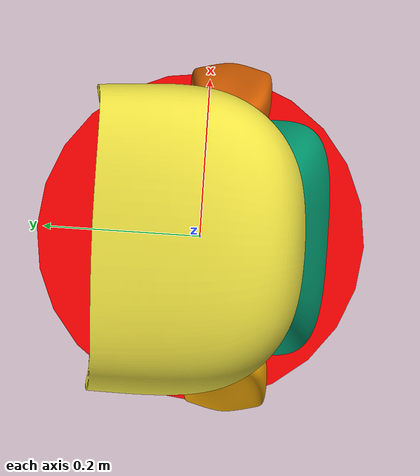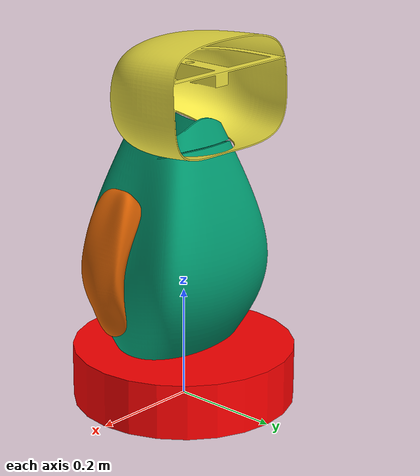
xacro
<?xml version="1.0"?>
<robot name="NEma" xmlns:xacro="http://www.ros.org/wiki/xacro">
    <xacro:include filename="$(find nema_description)/urdf/body.xacro" />
    <xacro:include filename="$(find nema_description)/urdf/arm.xacro" />
    <xacro:include filename="$(find nema_description)/urdf/joints.xacro" />
    <xacro:include filename="$(find nema_description)/urdf/gazebo.xacro" />
    <xacro:include filename="$(find nema_description)/urdf/robot_controllers.xacro" />
</robot>

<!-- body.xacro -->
<robot xmlns:xacro="http://www.ros.org/wiki/xacro">

    <link name="world"></link>

    <link name="base_link">
        <visual>
            <origin xyz="0.0 0.0 0.050" rpy="0.0 0.0 0.0"/>
            <geometry>
                <cylinder radius="0.200" length="0.1"/>
            </geometry>
	    <material name="red">
       		<color rgba="1 0 0 1"/>
    	    </material>
        </visual>
        <collision>
            <origin xyz="0.0 0.0 0.050" rpy="0.0 0.0 0.0"/>
            <geometry>
                <cylinder radius="0.200" length="0.1"/>
            </geometry>
        </collision>
        <inertial>
            <origin xyz="0 0 0.050" rpy="0.0 0.0 0.0"/>
            <mass value="0.1"/>
            <inertia ixx="0.1" ixy="0.0" ixz="0.0" iyy="0.1" iyz="0.0" izz="0.1"/>
        </inertial>
    </link>

    <link name="body_link">
        <visual>
            <origin xyz="0.0 -0.05 -0.010" rpy="0.0 0.0 0.0"/>
            <geometry>
                <mesh filename="package://nema_description/3D/Mesh/Body.dae" scale="0.002 0.002 0.002"/>
            </geometry>
        </visual>
        <collision>
            <origin xyz="0.0 -0.05 -0.010" rpy="0.0 0.0 0.0"/>
            <geometry>
                <mesh filename="package://nema_description/3D/Collition/Body.stl" scale="0.002 0.002 0.002"/>
            </geometry>
        </collision>
        <inertial>
            <origin xyz="0 0 0.0" rpy="0.0 0.0 0.0"/>
            <mass value="0.4"/>
            <inertia ixx="0.4" ixy="0.0" ixz="0.0" iyy="0.4" iyz="0.0" izz="0.4"/>
        </inertial>
    </link>

    <link name="face_link">
        <visual>
            <origin xyz="0.0 0.050 -0.470" rpy="0.0 0.0 3.14"/>
            <geometry>
                <mesh filename="package://nema_description/3D/Mesh/Face.dae" scale="0.002 0.002 0.002"/>
            </geometry>
        </visual>
        <collision>
            <origin xyz="0.0 0.050 -0.470" rpy="0.0 0.0 3.14"/>
            <geometry>
                <mesh filename="package://nema_description/3D/Collition/Face.stl" scale="0.002 0.002 0.002"/>
            </geometry>
        </collision>
        <inertial>
            <origin xyz="0 0 0.075" rpy="0.0 0.0 0.0"/>
            <mass value="0.08"/>
            <inertia ixx="0.08" ixy="0.0" ixz="0.0" iyy="0.08" iyz="0.0" izz="0.08"/>
        </inertial>
    </link>

    <link name="face_intermediate_link">
        <inertial>
            <mass value="0.01"/>
            <inertia ixx="0.0001" ixy="0" ixz="0" iyy="0.0001" iyz="0" izz="0.0001"/>
        </inertial>
    </link>

    <xacro:macro name="material_visual" params="ref_link">
        <gazebo reference="${ref_link}">
            <visual>
                <material>
                    <ambient>0.3 0.3 0.3 1.0</ambient>
                    <diffuse>0.7 0.7 0.7 1.0</diffuse>
                    <specular>0.01 0.01 0.01 1.0</specular>
                    <emissive>0.0 0.0 0.0 1.0</emissive>
                </material>
            </visual>
        </gazebo>
    </xacro:macro>
    <xacro:material_visual ref_link="base_link"/>
    <xacro:material_visual ref_link="body_link"/>
    <xacro:material_visual ref_link="face_link"/>
</robot>

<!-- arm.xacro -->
<robot xmlns:xacro="http://www.ros.org/wiki/xacro">

    <link name="right_arm">
        <visual>
            <origin xyz="-0.12 -0.02 -0.35" rpy="0.0 0.0 0.0"/>
            <geometry>
                <mesh filename="package://nema_description/3D/Mesh/RightArm.dae" scale="0.002 0.002 0.002"/>
            </geometry>
        </visual>
        <collision>
            <origin xyz="-0.12 -0.02 -0.35" rpy="0.0 0.0 0.0"/>
            <geometry>
                <mesh filename="package://nema_description/3D/Collition/RightArm.stl" scale="0.002 0.002 0.002"/>
            </geometry>
        </collision>
        <inertial>
            <origin xyz="0.0 0.0 -0.075" rpy="0.0 0.0 0.0"/>
            <mass value="0.06"/>
            <inertia ixx="0.06" ixy="0.0" ixz="0.0" iyy="0.06" iyz="0.0" izz="0.06"/>
        </inertial>
    </link>

    <link name="right_arm_intermediate_link">
        <origin xyz="0.0 0.0 0.0" rpy="0.0 0.0 3.14"/>
        <inertial>
            <mass value="0.01"/>
            <inertia ixx="0.0001" ixy="0" ixz="0" iyy="0.0001" iyz="0" izz="0.0001"/>
        </inertial>
    </link>
    <link name="left_arm_intermediate_link">
        <origin xyz="0.0 0.0 0.0" rpy="0.0 0.0 3.14"/>
        <inertial>
            <mass value="0.01"/>
            <inertia ixx="0.0001" ixy="0" ixz="0" iyy="0.0001" iyz="0" izz="0.0001"/>
        </inertial>
    </link>

    <link name="left_arm">
        <visual>
            <origin xyz="0.24 0 -0.38" rpy="0.0 0.0 0.0"/>
            <geometry>
                <mesh filename="package://nema_description/3D/Mesh/LeftArm.dae" scale="0.002 0.002 0.002"/>
            </geometry>
        </visual>
        <collision>
            <origin xyz="0.24 0 -0.38" rpy="0.0 0.0 0.0"/>
            <geometry>
                <mesh filename="package://nema_description/3D/Collition/LeftArm.stl" scale="0.002 0.002 0.002"/>
            </geometry>
        </collision>
        <inertial>
            <origin xyz="0.0 0.0 -0.0375" rpy="0.0 0.0 0.0"/>
            <mass value="0.03"/>
            <inertia ixx="0.03" ixy="0.0" ixz="0.0" iyy="0.03" iyz="0.0" izz="0.03"/>
        </inertial>
    </link>
    <xacro:macro name="material_visual" params="ref_link">
        <gazebo reference="${ref_link}">
            <visual>
                <material>
                    <ambient>0.3 0.3 0.3 1.0</ambient>
                    <diffuse>0.7 0.7 0.7 1.0</diffuse>
                    <specular>0.01 0.01 0.01 1.0</specular>
                    <emissive>0.0 0.0 0.0 1.0</emissive>
                </material>
            </visual>
        </gazebo>
    </xacro:macro>

    <xacro:material_visual ref_link="right_arm"/>
    <xacro:material_visual ref_link="left_arm"/>
</robot>

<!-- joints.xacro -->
<robot xmlns:xacro="http://www.ros.org/wiki/xacro">

    <joint name="fixed" type="fixed">
        <origin xyz="0.0 0.0 0.0" rpy="0.0 0.0 0.0"/>
        <parent link="world"/>
        <child link="base_link"/>
    </joint>

    <joint name="body_joint" type="revolute">
        <safety_controller k_position="100.0" k_velocity="40.0" soft_lower_limit="-0.8" soft_upper_limit="0.8"/>
        <origin rpy="0 0 0" xyz="0 0 0.100"/>
        <parent link="base_link"/>
        <child link="body_link"/>
        <axis xyz="0 0 1"/>
        <limit effort="5" lower="-0.85" upper="0.85" velocity="0.3"/>
    </joint>

    <joint name="face_joint_z" type="revolute">
        <safety_controller k_position="100.0" k_velocity="40.0" soft_lower_limit="-0.8" soft_upper_limit="0.8"/>
        <origin rpy="0 0 0" xyz="0 0 0.400"/>
        <parent link="body_link"/>
        <child link="face_intermediate_link"/>
        <axis xyz="0 0 1"/>
        <limit effort="30.0" lower="-0.85" upper="0.85" velocity="10.0"/>
    </joint>

    <joint name="face_joint_x" type="revolute">
        <safety_controller k_position="100.0" k_velocity="40.0" soft_lower_limit="-0.8" soft_upper_limit="0.8"/>
        <origin rpy="0 0 0" xyz="0 0 0.0"/>
        <parent link="face_intermediate_link"/>
        <child link="face_link"/>
        <axis xyz="1 0 0"/>
        <limit effort="5" lower="-0.85" upper="0.85" velocity="0.25"/>
    </joint>
    <joint name="right_joint_y" type="revolute">
        <safety_controller k_position="100.0" k_velocity="40.0" soft_lower_limit="0" soft_upper_limit="0.4"/>
        <origin rpy="0.0 0 0" xyz="0.125 -0.03 0.300"/>
        <parent link="body_link"/>
        <child link="right_arm_intermediate_link"/>
        <axis xyz="0 1 0"/>
        <limit effort="30.0" lower="-0.05" upper="0.45" velocity="10.0"/>
    </joint>
    <joint name="right_joint_x" type="revolute">
        <safety_controller k_position="100.0" k_velocity="40.0" soft_lower_limit="0" soft_upper_limit="0.8"/>
        <origin rpy="0.0 0 0" xyz="0.0 0 0.0"/>
        <parent link="right_arm_intermediate_link"/>
        <child link="right_arm"/>
        <axis xyz="1 0 0"/>
        <limit effort="30.0" lower="-0.05" upper="0.85" velocity="10.0"/>
    </joint>
    <joint name="left_joint_y" type="revolute">
        <safety_controller k_position="100.0" k_velocity="40.0" soft_lower_limit="0" soft_upper_limit="0.8"/>
        <origin rpy="0.0 0 0" xyz="-0.125 -0.03 0.300"/>
        <parent link="body_link"/>
        <child link="left_arm_intermediate_link"/>
        <axis xyz="0 1 0"/>
        <limit effort="30.0" lower="-0.05" upper="0.85" velocity="10.0"/>
    </joint>
    <joint name="left_joint_x" type="revolute">
        <safety_controller k_position="100.0" k_velocity="40.0" soft_lower_limit="0" soft_upper_limit="0.4"/>
        <origin rpy="0.0 0 0" xyz="0.0 0 0.0"/>
        <parent link="left_arm_intermediate_link"/>
        <child link="left_arm"/>
        <axis xyz="1 0 0"/>
        <limit effort="30.0" lower="-0.05" upper="0.45" velocity="10.0"/>
    </joint>

</robot>
